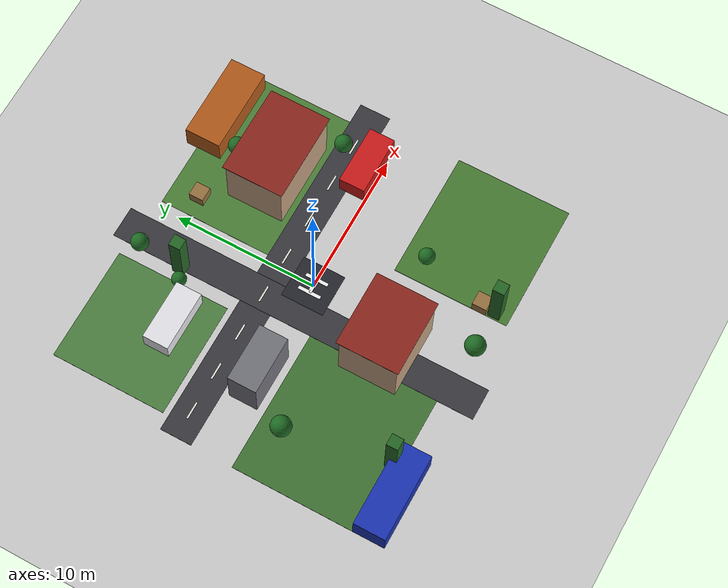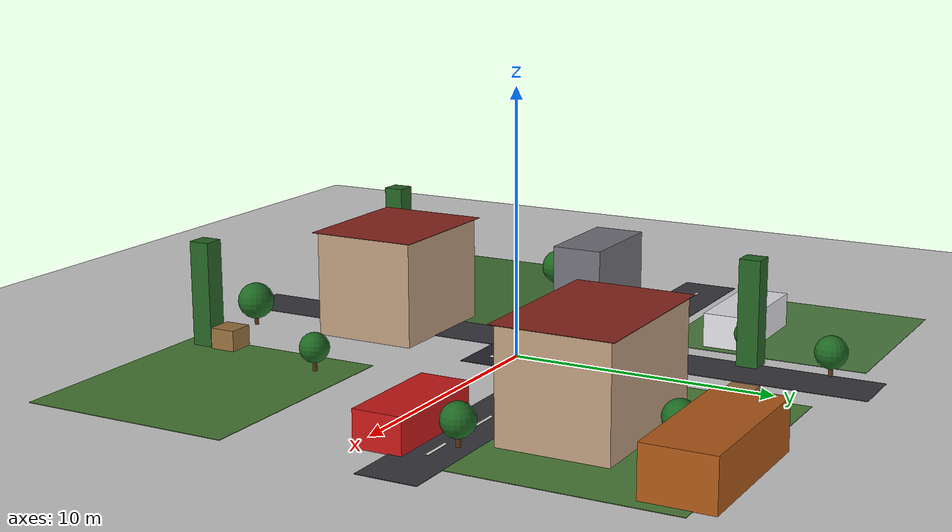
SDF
<sdf version="1.9">
 <world name="sage_rescue">
  <physics type="ode">
   <max_step_size>0.004</max_step_size>
   <real_time_factor>1.0</real_time_factor>
   <real_time_update_rate>250</real_time_update_rate>
  </physics>
  <gravity>0 0 -9.8</gravity>
  <magnetic_field>6e-06 2.3e-05 -4.2e-05</magnetic_field>
  <atmosphere type="adiabatic"/>
  <scene>
   <grid>false</grid>
   <ambient>0.4 0.4 0.4 1</ambient>
   <background>0.7 0.7 0.7 1</background>
   <shadows>true</shadows>
  </scene>
  <model name="ground_plane">
   <static>true</static>
   <link name="link">
    <collision name="collision">
     <geometry><plane><normal>0 0 1</normal><size>1 1</size></plane></geometry>
    </collision>
    <visual name="visual">
     <geometry><plane><normal>0 0 1</normal><size>500 500</size></plane></geometry>
     <material>
      <ambient>0.8 0.8 0.8 1</ambient>
      <diffuse>0.8 0.8 0.8 1</diffuse>
      <specular>0.8 0.8 0.8 1</specular>
     </material>
    </visual>
    <inertial>
     <mass>1</mass>
     <inertia><ixx>1</ixx><ixy>0</ixy><ixz>0</ixz><iyy>1</iyy><iyz>0</iyz><izz>1</izz></inertia>
    </inertial>
   </link>
  </model>
  <light name="sunUTC" type="directional">
   <pose>0 0 500 0 -0 0</pose>
   <intensity>1</intensity>
   <direction>0.001 0.625 -0.78</direction>
   <diffuse>0.904 0.904 0.904 1</diffuse>
   <specular>0.271 0.271 0.271 1</specular>
   <attenuation><range>2000</range><linear>0</linear><constant>1</constant><quadratic>0</quadratic></attenuation>
   <spot><inner_angle>0</inner_angle><outer_angle>0</outer_angle><falloff>0</falloff></spot>
  </light>
  <spherical_coordinates>
   <surface_model>EARTH_WGS84</surface_model>
   <world_frame_orientation>ENU</world_frame_orientation>
   <latitude_deg>47.397971057728974</latitude_deg>
   <longitude_deg>8.546163739800146</longitude_deg>
   <elevation>0</elevation>
  </spherical_coordinates>
  <model name="grass_0">
   <static>true</static>
   <pose>-7 -6 0.005 0 0 0</pose>
   <link name="l">
    <visual name="v">
     <geometry><box><size>12 9 0.02</size></box></geometry>
     <material><ambient>0.25 0.45 0.2 1</ambient><diffuse>0.25 0.45 0.2 1</diffuse></material>
    </visual>
   </link>
  </model>
  <model name="grass_1">
   <static>true</static>
   <pose>6 7 0.005 0 0 0</pose>
   <link name="l">
    <visual name="v">
     <geometry><box><size>11 9 0.02</size></box></geometry>
     <material><ambient>0.3 0.5 0.22 1</ambient><diffuse>0.3 0.5 0.22 1</diffuse></material>
    </visual>
   </link>
  </model>
  <model name="grass_2">
   <static>true</static>
   <pose>8 -8 0.005 0 0 0</pose>
   <link name="l">
    <visual name="v">
     <geometry><box><size>9 8 0.02</size></box></geometry>
     <material><ambient>0.28 0.48 0.2 1</ambient><diffuse>0.28 0.48 0.2 1</diffuse></material>
    </visual>
   </link>
  </model>
  <model name="grass_3">
   <static>true</static>
   <pose>-8 8 0.005 0 0 0</pose>
   <link name="l">
    <visual name="v">
     <geometry><box><size>8 8 0.02</size></box></geometry>
     <material><ambient>0.3 0.5 0.25 1</ambient><diffuse>0.3 0.5 0.25 1</diffuse></material>
    </visual>
   </link>
  </model>
  <model name="road_ew">
   <static>true</static>
   <pose>0.0 2.5 0.012 0 0 0</pose>
   <link name="l">
    <visual name="v">
     <geometry><box><size>26.0 2.2 0.02</size></box></geometry>
     <material><ambient>0.22 0.22 0.24 1</ambient><diffuse>0.22 0.22 0.24 1</diffuse></material>
    </visual>
   </link>
  </model>
  <model name="road_ns">
   <static>true</static>
   <pose>-2.0 0.0 0.013 0 0 0</pose>
   <link name="l">
    <visual name="v">
     <geometry><box><size>2.2 26.0 0.02</size></box></geometry>
     <material><ambient>0.22 0.22 0.24 1</ambient><diffuse>0.22 0.22 0.24 1</diffuse></material>
    </visual>
   </link>
  </model>
  <model name="dash_-11">
   <static>true</static>
   <pose>-11.0 2.5 0.02 0 0 0</pose>
   <link name="l">
    <visual name="v">
     <geometry><box><size>1.2 0.12 0.02</size></box></geometry>
     <material><ambient>0.9 0.9 0.85 1</ambient><diffuse>0.9 0.9 0.85 1</diffuse></material>
    </visual>
   </link>
  </model>
  <model name="dash_-8">
   <static>true</static>
   <pose>-8.0 2.5 0.02 0 0 0</pose>
   <link name="l">
    <visual name="v">
     <geometry><box><size>1.2 0.12 0.02</size></box></geometry>
     <material><ambient>0.9 0.9 0.85 1</ambient><diffuse>0.9 0.9 0.85 1</diffuse></material>
    </visual>
   </link>
  </model>
  <model name="dash_-5">
   <static>true</static>
   <pose>-5.0 2.5 0.02 0 0 0</pose>
   <link name="l">
    <visual name="v">
     <geometry><box><size>1.2 0.12 0.02</size></box></geometry>
     <material><ambient>0.9 0.9 0.85 1</ambient><diffuse>0.9 0.9 0.85 1</diffuse></material>
    </visual>
   </link>
  </model>
  <model name="dash_-2">
   <static>true</static>
   <pose>-2.0 2.5 0.02 0 0 0</pose>
   <link name="l">
    <visual name="v">
     <geometry><box><size>1.2 0.12 0.02</size></box></geometry>
     <material><ambient>0.9 0.9 0.85 1</ambient><diffuse>0.9 0.9 0.85 1</diffuse></material>
    </visual>
   </link>
  </model>
  <model name="dash_1">
   <static>true</static>
   <pose>1.0 2.5 0.02 0 0 0</pose>
   <link name="l">
    <visual name="v">
     <geometry><box><size>1.2 0.12 0.02</size></box></geometry>
     <material><ambient>0.9 0.9 0.85 1</ambient><diffuse>0.9 0.9 0.85 1</diffuse></material>
    </visual>
   </link>
  </model>
  <model name="dash_4">
   <static>true</static>
   <pose>4.0 2.5 0.02 0 0 0</pose>
   <link name="l">
    <visual name="v">
     <geometry><box><size>1.2 0.12 0.02</size></box></geometry>
     <material><ambient>0.9 0.9 0.85 1</ambient><diffuse>0.9 0.9 0.85 1</diffuse></material>
    </visual>
   </link>
  </model>
  <model name="dash_7">
   <static>true</static>
   <pose>7.0 2.5 0.02 0 0 0</pose>
   <link name="l">
    <visual name="v">
     <geometry><box><size>1.2 0.12 0.02</size></box></geometry>
     <material><ambient>0.9 0.9 0.85 1</ambient><diffuse>0.9 0.9 0.85 1</diffuse></material>
    </visual>
   </link>
  </model>
  <model name="dash_10">
   <static>true</static>
   <pose>10.0 2.5 0.02 0 0 0</pose>
   <link name="l">
    <visual name="v">
     <geometry><box><size>1.2 0.12 0.02</size></box></geometry>
     <material><ambient>0.9 0.9 0.85 1</ambient><diffuse>0.9 0.9 0.85 1</diffuse></material>
    </visual>
   </link>
  </model>
  <model name="helipad">
   <static>true</static>
   <pose>0.0 0.0 0.014 0 0 0</pose>
   <link name="l">
    <visual name="v">
     <geometry><box><size>3.0 3.0 0.02</size></box></geometry>
     <material><ambient>0.15 0.15 0.18 1</ambient><diffuse>0.15 0.15 0.18 1</diffuse></material>
    </visual>
   </link>
  </model>
  <model name="helipad_h1">
   <static>true</static>
   <pose>-0.5 0.0 0.02 0 0 0</pose>
   <link name="l">
    <visual name="v">
     <geometry><box><size>0.25 1.6 0.02</size></box></geometry>
     <material><ambient>0.95 0.95 0.95 1</ambient><diffuse>0.95 0.95 0.95 1</diffuse></material>
    </visual>
   </link>
  </model>
  <model name="helipad_h2">
   <static>true</static>
   <pose>0.5 0.0 0.02 0 0 0</pose>
   <link name="l">
    <visual name="v">
     <geometry><box><size>0.25 1.6 0.02</size></box></geometry>
     <material><ambient>0.95 0.95 0.95 1</ambient><diffuse>0.95 0.95 0.95 1</diffuse></material>
    </visual>
   </link>
  </model>
  <model name="helipad_h3">
   <static>true</static>
   <pose>0.0 0.0 0.02 0 0 0</pose>
   <link name="l">
    <visual name="v">
     <geometry><box><size>1.0 0.25 0.02</size></box></geometry>
     <material><ambient>0.95 0.95 0.95 1</ambient><diffuse>0.95 0.95 0.95 1</diffuse></material>
    </visual>
   </link>
  </model>
  <model name="building_1">
   <static>true</static>
   <pose>-1.5 -6.0 2.0 0 0 0</pose>
   <link name="l">
    <collision name="c"><geometry><box><size>5.0 4.0 4.0</size></box></geometry></collision>
    <visual name="v">
     <geometry><box><size>5.0 4.0 4.0</size></box></geometry>
     <material><ambient>0.75 0.62 0.5 1</ambient><diffuse>0.75 0.62 0.5 1</diffuse></material>
    </visual>
   </link>
  </model>
  <model name="building_1_roof">
   <static>true</static>
   <pose>-1.5 -6.0 4.02 0 0 0</pose>
   <link name="l">
    <visual name="v">
     <geometry><box><size>5.3 4.3 0.02</size></box></geometry>
     <material><ambient>0.55 0.15 0.12 1</ambient><diffuse>0.55 0.15 0.12 1</diffuse></material>
    </visual>
   </link>
  </model>
  <model name="building_2">
   <static>true</static>
   <pose>6.0 6.0 2.0 0 0 0</pose>
   <link name="l">
    <collision name="c"><geometry><box><size>6.0 4.0 4.0</size></box></geometry></collision>
    <visual name="v">
     <geometry><box><size>6.0 4.0 4.0</size></box></geometry>
     <material><ambient>0.75 0.62 0.5 1</ambient><diffuse>0.75 0.62 0.5 1</diffuse></material>
    </visual>
   </link>
  </model>
  <model name="building_2_roof">
   <static>true</static>
   <pose>6.0 6.0 4.02 0 0 0</pose>
   <link name="l">
    <visual name="v">
     <geometry><box><size>6.3 4.3 0.02</size></box></geometry>
     <material><ambient>0.55 0.15 0.12 1</ambient><diffuse>0.55 0.15 0.12 1</diffuse></material>
    </visual>
   </link>
  </model>
  <model name="wall">
   <static>true</static>
   <pose>-7.0 0.0 1.5 0 0 0</pose>
   <link name="l">
    <collision name="c"><geometry><box><size>4.0 2.0 3.0</size></box></geometry></collision>
    <visual name="v">
     <geometry><box><size>4.0 2.0 3.0</size></box></geometry>
     <material><ambient>0.45 0.45 0.48 1</ambient><diffuse>0.45 0.45 0.48 1</diffuse></material>
    </visual>
   </link>
  </model>
  <model name="tree_1">
   <static>true</static>
   <pose>-3.0 8.0 2.0 0 0 0</pose>
   <link name="l">
    <collision name="c">
     <geometry><box><size>0.7999999999999998 0.8000000000000007 4.0</size></box></geometry>
    </collision>
    <visual name="v">
     <geometry><box><size>0.7999999999999998 0.8000000000000007 4.0</size></box></geometry>
     <material><ambient>0.15 0.4 0.15 1</ambient><diffuse>0.15 0.4 0.15 1</diffuse></material>
    </visual>
   </link>
  </model>
  <model name="tree_2">
   <static>true</static>
   <pose>-8.0 -10.0 2.0 0 0 0</pose>
   <link name="l">
    <collision name="c">
     <geometry><box><size>0.8000000000000007 0.8000000000000007 4.0</size></box></geometry>
    </collision>
    <visual name="v">
     <geometry><box><size>0.8000000000000007 0.8000000000000007 4.0</size></box></geometry>
     <material><ambient>0.15 0.4 0.15 1</ambient><diffuse>0.15 0.4 0.15 1</diffuse></material>
    </visual>
   </link>
  </model>
  <model name="tree_3">
   <static>true</static>
   <pose>4.0 -11.0 2.0 0 0 0</pose>
   <link name="l">
    <collision name="c">
     <geometry><box><size>0.8000000000000003 0.8000000000000007 4.0</size></box></geometry>
    </collision>
    <visual name="v">
     <geometry><box><size>0.8000000000000003 0.8000000000000007 4.0</size></box></geometry>
     <material><ambient>0.15 0.4 0.15 1</ambient><diffuse>0.15 0.4 0.15 1</diffuse></material>
    </visual>
   </link>
  </model>
  <model name="bush_trunk_0">
   <static>true</static>
   <pose>-9.5 -3.0 0.25 0 0 0</pose>
   <link name="l">
    <visual name="v">
     <geometry><cylinder><radius>0.08</radius><length>0.5</length></cylinder></geometry>
     <material><ambient>0.35 0.22 0.1 1</ambient><diffuse>0.35 0.22 0.1 1</diffuse></material>
    </visual>
   </link>
  </model>
  <model name="bush_0">
   <static>true</static>
   <pose>-9.5 -3.0 0.97 0 0 0</pose>
   <link name="l">
    <visual name="v">
     <geometry><sphere><radius>0.7</radius></sphere></geometry>
     <material><ambient>0.12 0.42 0.14 1</ambient><diffuse>0.12 0.42 0.14 1</diffuse></material>
    </visual>
   </link>
  </model>
  <model name="bush_trunk_1">
   <static>true</static>
   <pose>9.5 3.0 0.25 0 0 0</pose>
   <link name="l">
    <visual name="v">
     <geometry><cylinder><radius>0.08</radius><length>0.5</length></cylinder></geometry>
     <material><ambient>0.35 0.22 0.1 1</ambient><diffuse>0.35 0.22 0.1 1</diffuse></material>
    </visual>
   </link>
  </model>
  <model name="bush_1">
   <static>true</static>
   <pose>9.5 3.0 0.91 0 0 0</pose>
   <link name="l">
    <visual name="v">
     <geometry><sphere><radius>0.6</radius></sphere></geometry>
     <material><ambient>0.12 0.42 0.14 1</ambient><diffuse>0.12 0.42 0.14 1</diffuse></material>
    </visual>
   </link>
  </model>
  <model name="bush_trunk_2">
   <static>true</static>
   <pose>1.0 -11.0 0.25 0 0 0</pose>
   <link name="l">
    <visual name="v">
     <geometry><cylinder><radius>0.08</radius><length>0.5</length></cylinder></geometry>
     <material><ambient>0.35 0.22 0.1 1</ambient><diffuse>0.35 0.22 0.1 1</diffuse></material>
    </visual>
   </link>
  </model>
  <model name="bush_2">
   <static>true</static>
   <pose>1.0 -11.0 0.97 0 0 0</pose>
   <link name="l">
    <visual name="v">
     <geometry><sphere><radius>0.7</radius></sphere></geometry>
     <material><ambient>0.12 0.42 0.14 1</ambient><diffuse>0.12 0.42 0.14 1</diffuse></material>
    </visual>
   </link>
  </model>
  <model name="bush_trunk_3">
   <static>true</static>
   <pose>-3.0 11.0 0.25 0 0 0</pose>
   <link name="l">
    <visual name="v">
     <geometry><cylinder><radius>0.08</radius><length>0.5</length></cylinder></geometry>
     <material><ambient>0.35 0.22 0.1 1</ambient><diffuse>0.35 0.22 0.1 1</diffuse></material>
    </visual>
   </link>
  </model>
  <model name="bush_3">
   <static>true</static>
   <pose>-3.0 11.0 0.91 0 0 0</pose>
   <link name="l">
    <visual name="v">
     <geometry><sphere><radius>0.6</radius></sphere></geometry>
     <material><ambient>0.12 0.42 0.14 1</ambient><diffuse>0.12 0.42 0.14 1</diffuse></material>
    </visual>
   </link>
  </model>
  <model name="bush_trunk_4">
   <static>true</static>
   <pose>-4.0 7.5 0.25 0 0 0</pose>
   <link name="l">
    <visual name="v">
     <geometry><cylinder><radius>0.08</radius><length>0.5</length></cylinder></geometry>
     <material><ambient>0.35 0.22 0.1 1</ambient><diffuse>0.35 0.22 0.1 1</diffuse></material>
    </visual>
   </link>
  </model>
  <model name="bush_4">
   <static>true</static>
   <pose>-4.0 7.5 0.8500000000000001 0 0 0</pose>
   <link name="l">
    <visual name="v">
     <geometry><sphere><radius>0.5</radius></sphere></geometry>
     <material><ambient>0.12 0.42 0.14 1</ambient><diffuse>0.12 0.42 0.14 1</diffuse></material>
    </visual>
   </link>
  </model>
  <model name="bush_trunk_5">
   <static>true</static>
   <pose>5.0 -5.5 0.25 0 0 0</pose>
   <link name="l">
    <visual name="v">
     <geometry><cylinder><radius>0.08</radius><length>0.5</length></cylinder></geometry>
     <material><ambient>0.35 0.22 0.1 1</ambient><diffuse>0.35 0.22 0.1 1</diffuse></material>
    </visual>
   </link>
  </model>
  <model name="bush_5">
   <static>true</static>
   <pose>5.0 -5.5 0.8800000000000001 0 0 0</pose>
   <link name="l">
    <visual name="v">
     <geometry><sphere><radius>0.55</radius></sphere></geometry>
     <material><ambient>0.12 0.42 0.14 1</ambient><diffuse>0.12 0.42 0.14 1</diffuse></material>
    </visual>
   </link>
  </model>
  <model name="bush_trunk_6">
   <static>true</static>
   <pose>6.0 9.0 0.25 0 0 0</pose>
   <link name="l">
    <visual name="v">
     <geometry><cylinder><radius>0.08</radius><length>0.5</length></cylinder></geometry>
     <material><ambient>0.35 0.22 0.1 1</ambient><diffuse>0.35 0.22 0.1 1</diffuse></material>
    </visual>
   </link>
  </model>
  <model name="bush_6">
   <static>true</static>
   <pose>6.0 9.0 0.91 0 0 0</pose>
   <link name="l">
    <visual name="v">
     <geometry><sphere><radius>0.6</radius></sphere></geometry>
     <material><ambient>0.12 0.42 0.14 1</ambient><diffuse>0.12 0.42 0.14 1</diffuse></material>
    </visual>
   </link>
  </model>
  <model name="bush_trunk_7">
   <static>true</static>
   <pose>-1.5 -7.0 0.25 0 0 0</pose>
   <link name="l">
    <visual name="v">
     <geometry><cylinder><radius>0.08</radius><length>0.5</length></cylinder></geometry>
     <material><ambient>0.35 0.22 0.1 1</ambient><diffuse>0.35 0.22 0.1 1</diffuse></material>
    </visual>
   </link>
  </model>
  <model name="bush_7">
   <static>true</static>
   <pose>-1.5 -7.0 0.8500000000000001 0 0 0</pose>
   <link name="l">
    <visual name="v">
     <geometry><sphere><radius>0.5</radius></sphere></geometry>
     <material><ambient>0.12 0.42 0.14 1</ambient><diffuse>0.12 0.42 0.14 1</diffuse></material>
    </visual>
   </link>
  </model>
  <model name="car_red">
   <static>true</static>
   <pose>9.0 1.0 0.65 0 0 0</pose>
   <link name="l">
    <visual name="v">
     <geometry><box><size>4.2 1.8 1.3</size></box></geometry>
     <material><ambient>0.8 0.1 0.1 1</ambient><diffuse>0.8 0.1 0.1 1</diffuse></material>
    </visual>
   </link>
  </model>
  <model name="car_white">
   <static>true</static>
   <pose>-6.5 6.5 0.65 0 0 0</pose>
   <link name="l">
    <visual name="v">
     <geometry><box><size>4.2 1.8 1.3</size></box></geometry>
     <material><ambient>0.9 0.9 0.92 1</ambient><diffuse>0.9 0.9 0.92 1</diffuse></material>
    </visual>
   </link>
  </model>
  <model name="truck_blue">
   <static>true</static>
   <pose>-10.0 -11.0 0.85 0 0 0</pose>
   <link name="l">
    <visual name="v">
     <geometry><box><size>6.0 2.2 1.7</size></box></geometry>
     <material><ambient>0.1 0.2 0.7 1</ambient><diffuse>0.1 0.2 0.7 1</diffuse></material>
    </visual>
   </link>
  </model>
  <model name="container">
   <static>true</static>
   <pose>8.0 11.0 0.9 0 0 0</pose>
   <link name="l">
    <visual name="v">
     <geometry><box><size>6.0 2.5 1.8</size></box></geometry>
     <material><ambient>0.7 0.35 0.1 1</ambient><diffuse>0.7 0.35 0.1 1</diffuse></material>
    </visual>
   </link>
  </model>
  <model name="crate_a">
   <static>true</static>
   <pose>4.0 -10.0 0.4 0 0 0</pose>
   <link name="l">
    <visual name="v">
     <geometry><box><size>1.0 1.0 0.8</size></box></geometry>
     <material><ambient>0.6 0.45 0.25 1</ambient><diffuse>0.6 0.45 0.25 1</diffuse></material>
    </visual>
   </link>
  </model>
  <model name="crate_b">
   <static>true</static>
   <pose>2.0 9.5 0.4 0 0 0</pose>
   <link name="l">
    <visual name="v">
     <geometry><box><size>1.0 1.0 0.8</size></box></geometry>
     <material><ambient>0.6 0.45 0.25 1</ambient><diffuse>0.6 0.45 0.25 1</diffuse></material>
    </visual>
   </link>
  </model>
 </world>
</sdf>
